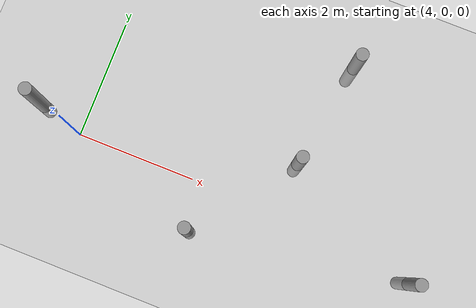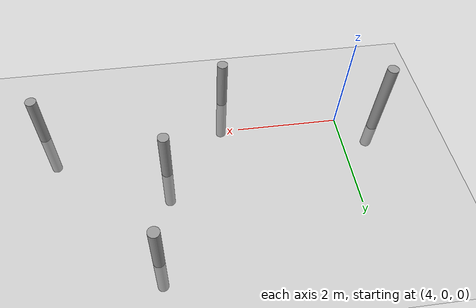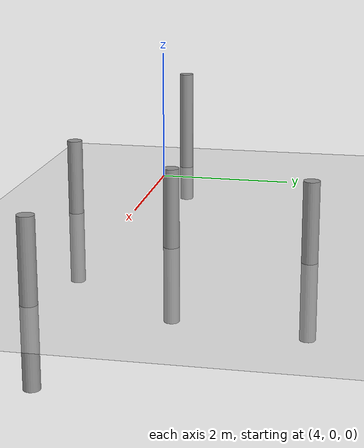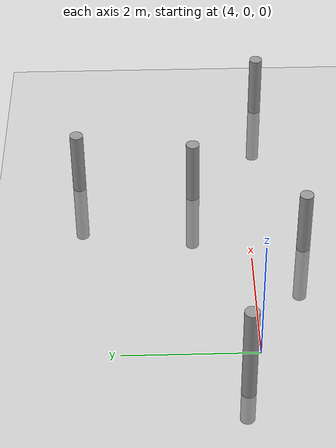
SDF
<sdf version="1.6">
 <world name="default">
  <model name="ground_plane">
   <static>1</static>
   <link name="link">
    <collision name="collision">
     <geometry><plane><normal>0 0 1</normal><size>100 100</size></plane></geometry>
     <surface>
      <contact><collide_bitmask>65535</collide_bitmask></contact>
      <friction><ode><mu>100</mu><mu2>50</mu2></ode></friction>
     </surface>
    </collision>
    <visual name="visual">
     <cast_shadows>0</cast_shadows>
     <geometry><plane><normal>0 0 1</normal><size>100 100</size></plane></geometry>
     <material>
      <script><uri>file://media/materials/scripts/gazebo.material</uri><name>Gazebo/Grey</name></script>
     </material>
    </visual>
   </link>
  </model>
  <model name="pole">
   <link name="link">
    <inertial>
     <mass>0.0953443</mass>
     <inertia>
      <ixx>0.0359089</ixx>
      <ixy>0</ixy>
      <ixz>0</ixz>
      <iyy>0.0359089</iyy>
      <iyz>0</iyz>
      <izz>0.000536427</izz>
     </inertia>
    </inertial>
    <visual name="visual">
     <geometry><cylinder><radius>0.106077</radius><length>2.11795</length></cylinder></geometry>
     <material>
      <script><name>Gazebo/Grey</name><uri>file://media/materials/scripts/gazebo.material</uri></script>
     </material>
    </visual>
    <collision name="collision">
     <geometry><cylinder><radius>0.106077</radius><length>2.11795</length></cylinder></geometry>
     <surface>
      <friction>
       <ode><mu>1</mu><mu2>1</mu2><fdir1>0 0 0</fdir1><slip1>0</slip1><slip2>0</slip2></ode>
       <torsional>
        <coefficient>1</coefficient>
        <patch_radius>0</patch_radius>
        <surface_radius>0</surface_radius>
        <use_patch_radius>1</use_patch_radius>
        <ode><slip>0</slip></ode>
       </torsional>
      </friction>
      <bounce><restitution_coefficient>0</restitution_coefficient><threshold>1e+06</threshold></bounce>
      <contact>
       <collide_without_contact>0</collide_without_contact>
       <collide_without_contact_bitmask>1</collide_without_contact_bitmask>
       <collide_bitmask>1</collide_bitmask>
       <ode>
        <soft_cfm>0</soft_cfm>
        <soft_erp>0.2</soft_erp>
        <kp>1e+13</kp>
        <kd>1</kd>
        <max_vel>0.01</max_vel>
        <min_depth>0</min_depth>
       </ode>
       <bullet>
        <split_impulse>1</split_impulse>
        <split_impulse_penetration_threshold>-0.01</split_impulse_penetration_threshold>
        <soft_cfm>0</soft_cfm>
        <soft_erp>0.2</soft_erp>
        <kp>1e+13</kp>
        <kd>1</kd>
       </bullet>
      </contact>
     </surface>
    </collision>
   </link>
   <static>0</static>
   <pose>3.26416 0.228523 0.5 0 -0 0</pose>
  </model>
  <model name="pole_0">
   <link name="link">
    <inertial>
     <mass>0.0953443</mass>
     <inertia>
      <ixx>0.0359089</ixx>
      <ixy>0</ixy>
      <ixz>0</ixz>
      <iyy>0.0359089</iyy>
      <iyz>0</iyz>
      <izz>0.000536427</izz>
     </inertia>
    </inertial>
    <visual name="visual">
     <geometry><cylinder><radius>0.106077</radius><length>2.11795</length></cylinder></geometry>
     <material>
      <script><name>Gazebo/Grey</name><uri>file://media/materials/scripts/gazebo.material</uri></script>
     </material>
    </visual>
    <collision name="collision">
     <geometry><cylinder><radius>0.106077</radius><length>2.11795</length></cylinder></geometry>
     <surface>
      <friction>
       <ode><mu>1</mu><mu2>1</mu2><fdir1>0 0 0</fdir1><slip1>0</slip1><slip2>0</slip2></ode>
       <torsional>
        <coefficient>1</coefficient>
        <patch_radius>0</patch_radius>
        <surface_radius>0</surface_radius>
        <use_patch_radius>1</use_patch_radius>
        <ode><slip>0</slip></ode>
       </torsional>
      </friction>
      <bounce><restitution_coefficient>0</restitution_coefficient><threshold>1e+06</threshold></bounce>
      <contact>
       <collide_without_contact>0</collide_without_contact>
       <collide_without_contact_bitmask>1</collide_without_contact_bitmask>
       <collide_bitmask>1</collide_bitmask>
       <ode>
        <soft_cfm>0</soft_cfm>
        <soft_erp>0.2</soft_erp>
        <kp>1e+13</kp>
        <kd>1</kd>
        <max_vel>0.01</max_vel>
        <min_depth>0</min_depth>
       </ode>
       <bullet>
        <split_impulse>1</split_impulse>
        <split_impulse_penetration_threshold>-0.01</split_impulse_penetration_threshold>
        <soft_cfm>0</soft_cfm>
        <soft_erp>0.2</soft_erp>
        <kp>1e+13</kp>
        <kd>1</kd>
       </bullet>
      </contact>
     </surface>
    </collision>
   </link>
   <static>0</static>
   <pose>6.23036 -0.815219 0 0 -0 0</pose>
  </model>
  <model name="pole_1">
   <link name="link">
    <inertial>
     <mass>0.0953443</mass>
     <inertia>
      <ixx>0.0359089</ixx>
      <ixy>0</ixy>
      <ixz>0</ixz>
      <iyy>0.0359089</iyy>
      <iyz>0</iyz>
      <izz>0.000536427</izz>
     </inertia>
    </inertial>
    <visual name="visual">
     <geometry><cylinder><radius>0.106077</radius><length>2.11795</length></cylinder></geometry>
     <material>
      <script><name>Gazebo/Grey</name><uri>file://media/materials/scripts/gazebo.material</uri></script>
     </material>
    </visual>
    <collision name="collision">
     <geometry><cylinder><radius>0.106077</radius><length>2.11795</length></cylinder></geometry>
     <surface>
      <friction>
       <ode><mu>1</mu><mu2>1</mu2><fdir1>0 0 0</fdir1><slip1>0</slip1><slip2>0</slip2></ode>
       <torsional>
        <coefficient>1</coefficient>
        <patch_radius>0</patch_radius>
        <surface_radius>0</surface_radius>
        <use_patch_radius>1</use_patch_radius>
        <ode><slip>0</slip></ode>
       </torsional>
      </friction>
      <bounce><restitution_coefficient>0</restitution_coefficient><threshold>1e+06</threshold></bounce>
      <contact>
       <collide_without_contact>0</collide_without_contact>
       <collide_without_contact_bitmask>1</collide_without_contact_bitmask>
       <collide_bitmask>1</collide_bitmask>
       <ode>
        <soft_cfm>0</soft_cfm>
        <soft_erp>0.2</soft_erp>
        <kp>1e+13</kp>
        <kd>1</kd>
        <max_vel>0.01</max_vel>
        <min_depth>0</min_depth>
       </ode>
       <bullet>
        <split_impulse>1</split_impulse>
        <split_impulse_penetration_threshold>-0.01</split_impulse_penetration_threshold>
        <soft_cfm>0</soft_cfm>
        <soft_erp>0.2</soft_erp>
        <kp>1e+13</kp>
        <kd>1</kd>
       </bullet>
      </contact>
     </surface>
    </collision>
   </link>
   <static>0</static>
   <pose>7.52767 0.865677 0 0 -0 0</pose>
  </model>
  <model name="pole_2">
   <link name="link">
    <inertial>
     <mass>0.0953443</mass>
     <inertia>
      <ixx>0.0359089</ixx>
      <ixy>0</ixy>
      <ixz>0</ixz>
      <iyy>0.0359089</iyy>
      <iyz>0</iyz>
      <izz>0.000536427</izz>
     </inertia>
    </inertial>
    <visual name="visual">
     <geometry><cylinder><radius>0.106077</radius><length>2.11795</length></cylinder></geometry>
     <material>
      <script><name>Gazebo/Grey</name><uri>file://media/materials/scripts/gazebo.material</uri></script>
     </material>
    </visual>
    <collision name="collision">
     <geometry><cylinder><radius>0.106077</radius><length>2.11795</length></cylinder></geometry>
     <surface>
      <friction>
       <ode><mu>1</mu><mu2>1</mu2><fdir1>0 0 0</fdir1><slip1>0</slip1><slip2>0</slip2></ode>
       <torsional>
        <coefficient>1</coefficient>
        <patch_radius>0</patch_radius>
        <surface_radius>0</surface_radius>
        <use_patch_radius>1</use_patch_radius>
        <ode><slip>0</slip></ode>
       </torsional>
      </friction>
      <bounce><restitution_coefficient>0</restitution_coefficient><threshold>1e+06</threshold></bounce>
      <contact>
       <collide_without_contact>0</collide_without_contact>
       <collide_without_contact_bitmask>1</collide_without_contact_bitmask>
       <collide_bitmask>1</collide_bitmask>
       <ode>
        <soft_cfm>0</soft_cfm>
        <soft_erp>0.2</soft_erp>
        <kp>1e+13</kp>
        <kd>1</kd>
        <max_vel>0.01</max_vel>
        <min_depth>0</min_depth>
       </ode>
       <bullet>
        <split_impulse>1</split_impulse>
        <split_impulse_penetration_threshold>-0.01</split_impulse_penetration_threshold>
        <soft_cfm>0</soft_cfm>
        <soft_erp>0.2</soft_erp>
        <kp>1e+13</kp>
        <kd>1</kd>
       </bullet>
      </contact>
     </surface>
    </collision>
   </link>
   <static>0</static>
   <pose>7.81616 2.71194 0 0 -0 0</pose>
  </model>
  <model name="pole_4">
   <link name="link">
    <inertial>
     <mass>0.0953443</mass>
     <inertia>
      <ixx>0.0359089</ixx>
      <ixy>0</ixy>
      <ixz>0</ixz>
      <iyy>0.0359089</iyy>
      <iyz>0</iyz>
      <izz>0.000536427</izz>
     </inertia>
    </inertial>
    <visual name="visual">
     <geometry><cylinder><radius>0.106077</radius><length>2.11795</length></cylinder></geometry>
     <material>
      <script><name>Gazebo/Grey</name><uri>file://media/materials/scripts/gazebo.material</uri></script>
     </material>
    </visual>
    <collision name="collision">
     <geometry><cylinder><radius>0.106077</radius><length>2.11795</length></cylinder></geometry>
     <surface>
      <friction>
       <ode><mu>1</mu><mu2>1</mu2><fdir1>0 0 0</fdir1><slip1>0</slip1><slip2>0</slip2></ode>
       <torsional>
        <coefficient>1</coefficient>
        <patch_radius>0</patch_radius>
        <surface_radius>0</surface_radius>
        <use_patch_radius>1</use_patch_radius>
        <ode><slip>0</slip></ode>
       </torsional>
      </friction>
      <bounce><restitution_coefficient>0</restitution_coefficient><threshold>1e+06</threshold></bounce>
      <contact>
       <collide_without_contact>0</collide_without_contact>
       <collide_without_contact_bitmask>1</collide_without_contact_bitmask>
       <collide_bitmask>1</collide_bitmask>
       <ode>
        <soft_cfm>0</soft_cfm>
        <soft_erp>0.2</soft_erp>
        <kp>1e+13</kp>
        <kd>1</kd>
        <max_vel>0.01</max_vel>
        <min_depth>0</min_depth>
       </ode>
       <bullet>
        <split_impulse>1</split_impulse>
        <split_impulse_penetration_threshold>-0.01</split_impulse_penetration_threshold>
        <soft_cfm>0</soft_cfm>
        <soft_erp>0.2</soft_erp>
        <kp>1e+13</kp>
        <kd>1</kd>
       </bullet>
      </contact>
     </surface>
    </collision>
   </link>
   <static>0</static>
   <pose>9.89751 -0.298367 0 0 -0 0</pose>
  </model>
 </world>
</sdf>
